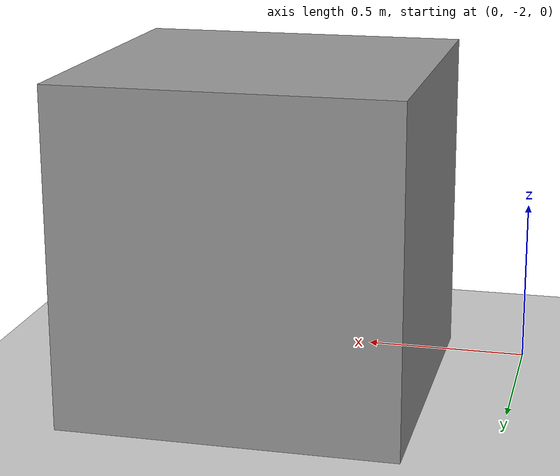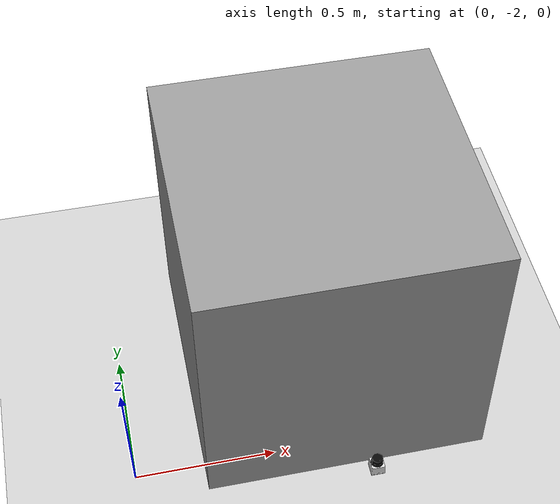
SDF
<sdf version="1.6">
 <world name="default">
  <light name="sun" type="directional">
   <pose>0 0 10 0 -0 0</pose>
   <diffuse>0.8 0.8 0.8 1</diffuse>
   <specular>0.1 0.1 0.1 1</specular>
   <attenuation>
    <range>1000</range>
    <constant>0.9</constant>
    <linear>0.01</linear>
    <quadratic>0.001</quadratic>
   </attenuation>
   <direction>-0.5 0.5 -1</direction>
  </light>
  <model name="ground_plane">
   <static>1</static>
   <link name="link">
    <collision name="collision">
     <geometry><plane><normal>0 0 1</normal><size>100 100</size></plane></geometry>
     <surface><friction><ode><mu>100</mu><mu2>50</mu2></ode></friction></surface>
    </collision>
    <visual name="visual">
     <cast_shadows>0</cast_shadows>
     <geometry><plane><normal>0 0 1</normal><size>100 100</size></plane></geometry>
     <material>
      <script><uri>file://media/materials/scripts/gazebo.material</uri><name>Gazebo/Grey</name></script>
     </material>
    </visual>
   </link>
  </model>
  <gravity>0 0 -9.8</gravity>
  <magnetic_field>6e-06 2.3e-05 -4.2e-05</magnetic_field>
  <atmosphere type="adiabatic"/>
  <physics name="default_physics" default="0" type="ode">
   <max_step_size>0.001</max_step_size>
   <real_time_factor>1</real_time_factor>
   <real_time_update_rate>1000</real_time_update_rate>
  </physics>
  <scene><ambient>0.4 0.4 0.4 1</ambient><background>0.7 0.7 0.7 1</background><shadows>1</shadows></scene>
  <spherical_coordinates>
   <surface_model>EARTH_WGS84</surface_model>
   <latitude_deg>0</latitude_deg>
   <longitude_deg>0</longitude_deg>
   <elevation>0</elevation>
   <heading_deg>0</heading_deg>
  </spherical_coordinates>
  <model name="unit_box">
   <pose>0.747034 -1.60004 0.499995 1e-05 0 0.000147</pose>
   <link name="link">
    <inertial>
     <mass>1</mass>
     <inertia>
      <ixx>0.166667</ixx>
      <ixy>0</ixy>
      <ixz>0</ixz>
      <iyy>0.166667</iyy>
      <iyz>0</iyz>
      <izz>0.166667</izz>
     </inertia>
    </inertial>
    <collision name="collision"><geometry><box><size>1 1 1</size></box></geometry></collision>
    <visual name="visual">
     <geometry><box><size>1 1 1</size></box></geometry>
     <material>
      <script><name>Gazebo/Grey</name><uri>file://media/materials/scripts/gazebo.material</uri></script>
     </material>
    </visual>
   </link>
  </model>
  <model name="hokuyo">
   <pose>0.843412 -2.13935 0.035 6e-06 -0 -0.001466</pose>
   <link name="link">
    <inertial>
     <mass>0.1</mass>
     <inertia><ixx>1</ixx><ixy>0</ixy><ixz>0</ixz><iyy>1</iyy><iyz>0</iyz><izz>1</izz></inertia>
    </inertial>
    <visual name="visual">
     <geometry><mesh><uri>model://hokuyo/meshes/hokuyo.dae</uri><scale>1 1 1</scale></mesh></geometry>
    </visual>
    <collision name="collision-base">
     <pose>0 0 -0.0145 0 -0 0</pose>
     <geometry><box><size>0.05 0.05 0.041</size></box></geometry>
    </collision>
    <collision name="collision-top">
     <pose>0 0 0.0205 0 -0 0</pose>
     <geometry><cylinder><radius>0.021</radius><length>0.029</length></cylinder></geometry>
    </collision>
    <sensor name="laser" type="ray">
     <pose>0.01 0 0.0175 0 -0 0</pose>
     <ray>
      <scan>
       <horizontal>
        <samples>640</samples>
        <resolution>1</resolution>
        <min_angle>-2.26889</min_angle>
        <max_angle>2.2689</max_angle>
       </horizontal>
       <vertical><samples>1</samples><min_angle>0</min_angle><max_angle>0</max_angle></vertical>
      </scan>
      <range><min>0.08</min><max>10</max><resolution>0.01</resolution></range>
     </ray>
     <plugin name="laser" filename="libGpuRayPlugin.so"/>
     <always_on>1</always_on>
     <update_rate>30</update_rate>
     <visualize>1</visualize>
    </sensor>
   </link>
  </model>
 </world>
</sdf>
